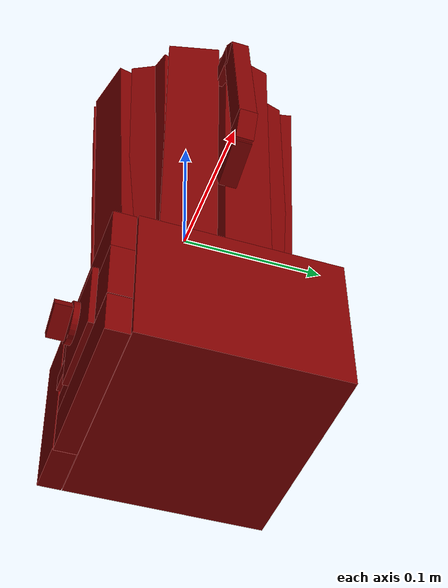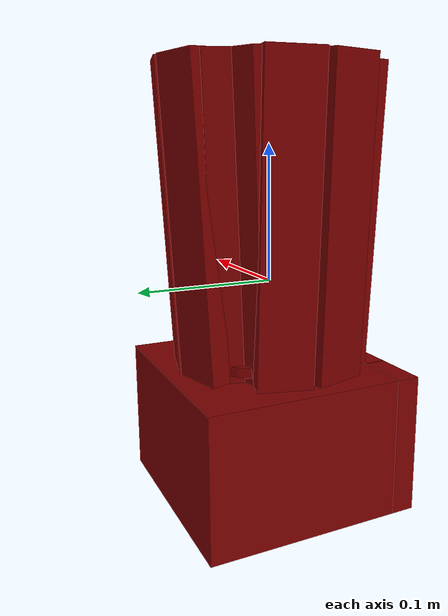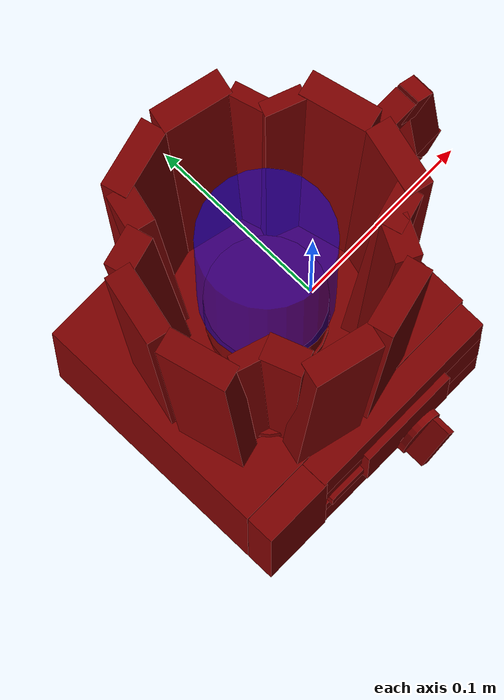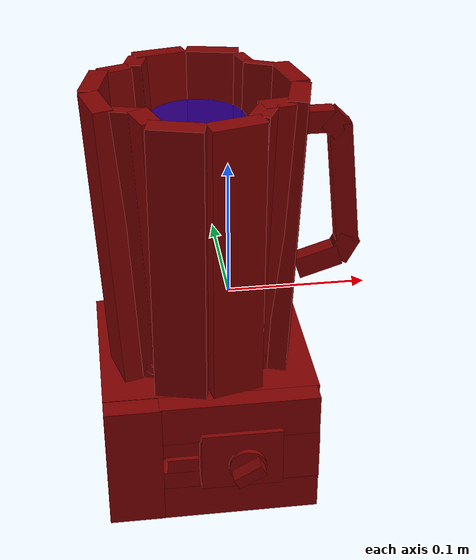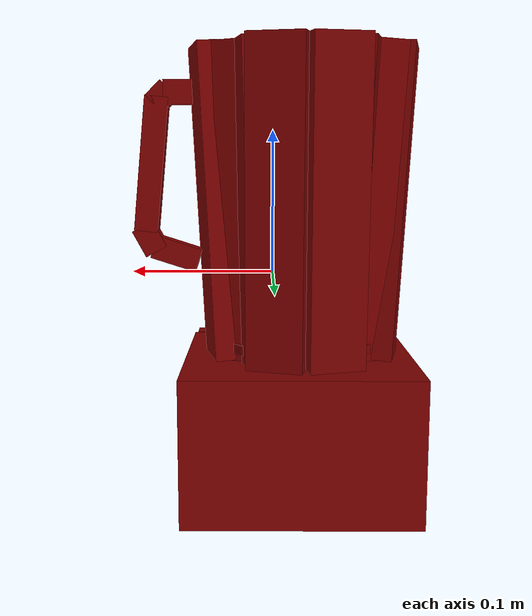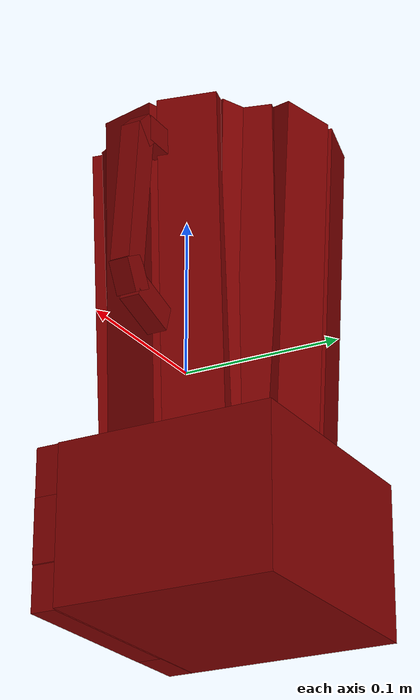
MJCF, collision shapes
<?xml version='1.0' encoding='UTF-8'?>
<mujoco model="model">
  <option timestep="0.002" gravity="0.0 0.0 -9.81"/>
  <compiler angle="radian"/>
  <asset>
    <mesh file="visuals/blade.obj" name="blade_vis"/>
    <mesh file="visuals/Body001.obj" name="Body001_vis"/>
    <mesh file="visuals/knob_speed.obj" name="knob_speed_vis"/>
    <mesh file="visuals/pitcher.obj" name="pitcher_vis"/>
    <mesh file="visuals/pitcher_main.obj" name="pitcher_main_vis"/>
    <mesh file="visuals/power_button.obj" name="power_button_vis"/>
    <texture file="visuals/T_BC001.png" name="Body001_material" type="2d"/>
    <material name="Body001_material" rgba="1 1 1 1.0" texture="Body001_material" shininess="0.5" specular="0.33333333333333337"/>
    <texture file="visuals/T_BC001.png" name="knob_speed_material" type="2d"/>
    <material name="knob_speed_material" rgba="1 1 1 1.0" texture="knob_speed_material" shininess="0.5" specular="0.33333333333333337"/>
    <texture file="visuals/T_BC001.png" name="pitcher_material" type="2d"/>
    <material name="pitcher_material" rgba="1 1 1 1.0" texture="pitcher_material" shininess="0.5" specular="0.33333333333333337"/>
    <texture file="visuals/T_BC001.png" name="blade_material" type="2d"/>
    <material name="blade_material" rgba="1 1 1 1.0" texture="blade_material" shininess="0.5" specular="0.33333333333333337"/>
    <material name="pitcher_main_material" rgba="0.32120847702026367 0.32120847702026367 0.32120847702026367 0.699999988079071" shininess="0.5" specular="0.33333333333333337"/>
    <texture file="visuals/T_BC001.png" name="power_button_material" type="2d"/>
    <material name="power_button_material" rgba="1 1 1 1.0" texture="power_button_material" shininess="0.5" specular="0.33333333333333337"/>
  </asset>
  <default>
    <default class="visual">
      <geom conaffinity="0" contype="0" group="1" type="mesh"/>
    </default>
    <default class="collision">
      <geom group="0" rgba="0.5 0 0 0.5" density="1.0" solref="0.004 1" solimp="0.998 0.998 0.001"/>
    </default>
    <default class="spawn">
      <geom group="0" rgba="1 1 1 0.5" contype="0" conaffinity="0"/>
      <site group="0" rgba="1 1 1 0.5"/>
    </default>
    <default class="region">
      <geom group="1" conaffinity="0" contype="0" rgba="0 1 0 0" mass="0"/>
    </default>
  </default>
  <worldbody>
    <body>
      <body name="object">
        <geom mesh="Body001_vis" type="mesh" solimp="0.998 0.998 0.001" solref="0.001 1" friction="0.95 0.3 0.1" class="visual" material="Body001_material"/>
        <geom type="box" pos="-0.04280856 -0.05737055 -0.09167306" size="0.013396352529525757 0.0077486238442361355 0.006119240075349808" quat="1.0 0.0 0.0 0.0" class="collision"/>
        <geom type="box" pos="-0.04280856 -0.05737055 -0.11913420" size="0.013396353460848331 0.0077486238442361355 0.007200401276350021" quat="1.0 0.0 0.0 0.0" class="collision"/>
        <geom type="box" pos="0.00132513 -0.05934339 -0.10264585" size="0.02963782288134098 0.009721463546156883 0.02329988218843937" quat="1.0 0.0 0.0 0.0" class="collision"/>
        <geom type="box" pos="0.04288949 -0.05737055 -0.10600674" size="0.015503577888011932 0.0077486238442361355 0.019938983023166656" quat="1.0 0.0 0.0 0.0" class="collision"/>
        <geom type="box" pos="0.00057280 -0.05737055 -0.14032202" size="0.057547878473997116 0.0077486238442361355 0.013972078450024128" quat="1.0 0.0 0.0 0.0" class="collision"/>
        <geom type="box" pos="0.00057280 -0.05737055 -0.07073684" size="0.05754786357283592 0.0077486238442361355 0.015359555371105671" quat="1.0 0.0 0.0 0.0" class="collision"/>
        <geom type="box" pos="-0.07594047 -0.05768858 -0.10481217" size="0.020235484465956688 0.008066640235483646 0.04907001182436943" quat="1.0 0.0 0.0 0.0" class="collision"/>
        <geom type="box" pos="-0.01801905 0.01927943 -0.10481217" size="0.07815690338611603 0.06847110390663147 0.04907036945223808" quat="1.0 0.0 0.0 0.0" class="collision"/>
        <body name="knob_speed">
          <joint axis="0.0 1.0 0.0" pos="0.00424393 -0.07910890 -0.10418915" limited="true" name="knob_speed_joint" range="0.0 4.014257279586958" type="hinge" damping="0.05" armature="0.001"/>
          <geom mesh="knob_speed_vis" type="mesh" solimp="0.998 0.998 0.001" solref="0.001 1" friction="0.95 0.3 0.1" class="visual" material="knob_speed_material"/>
          <geom class="collision" type="box" pos="0.00443760 -0.08127745 -0.10438756" size="0.004442211706191301 0.005708749406039715 0.011259826831519604" quat="0.8617826700210571 0.0 0.5072776675224304 0.0" name="knob_speed_main"/>
          <geom type="cylinder" pos="0.00442496 -0.07349149 -0.10450585" size="0.013652672059834003 0.002001713728532195" quat="0.7071067094802856 -0.7071068286895752 -1.5700929612083792e-16 -2.2148510003422914e-23" class="collision"/>
        </body>
        <body name="pitcher">
          <geom mesh="pitcher_vis" type="mesh" solimp="0.998 0.998 0.001" solref="0.001 1" friction="0.95 0.3 0.1" class="visual" material="pitcher_material"/>
          <geom class="collision" type="box" pos="0.06702685 0.01176525 0.01491736" size="0.016262676566839218 0.006255174987018108 0.00810184981673956" quat="0.9880656599998474 9.18393884873699e-16 -0.15403316915035248 -2.0695718916385886e-08" name="pitcher_handle_3"/>
          <geom class="collision" type="box" pos="0.08345240 0.01176526 0.07628109" size="0.046001095324754715 0.006255174987018108 0.008101828396320343" quat="0.6722349524497986 -0.0 -0.7403379082679749 -0.0" name="pitcher_handle_1"/>
          <geom class="collision" type="box" pos="0.08549953 0.01176527 0.02507146" size="0.010042424313724041 0.006255174987018108 0.008101828396320343" quat="0.5120910406112671 -2.831900499148353e-14 0.8589311838150024 1.1540498690010281e-07" name="pitcher_handle_2"/>
          <geom class="collision" type="box" pos="0.07592823 0.01176525 0.12210338" size="0.007123907096683979 0.006255174987018108 0.008101827464997768" quat="0.924427330493927 4.577533759485795e-15 0.38135823607444763 5.1238849607671e-08" name="pitcher_handle_4"/>
          <geom class="collision" type="box" pos="0.06323670 0.01176525 0.12484078" size="0.011389952152967453 0.00625518849119544 0.008101827464997768" quat="1.0 0.0 0.0 0.0" name="pitcher_handle_0"/>
          <geom type="cylinder" pos="-0.01913705 0.01130384 -0.04567479" size="0.057082075625658035 0.0033115732949227095" quat="1.0 0.0 0.0 0.0" class="collision"/>
          <geom type="cylinder" pos="-0.01913705 0.01130384 -0.02962197" size="0.03111385926604271 0.0028781581204384565" quat="1.0 0.0 0.0 0.0" class="collision"/>
          <body name="blade">
            <geom mesh="blade_vis" type="mesh" solimp="0.998 0.998 0.001" solref="0.001 1" friction="0.95 0.3 0.1" class="visual" material="blade_material"/>
            <geom type="cylinder" pos="-0.01985569 0.01151934 -0.00260079" size="0.031107977032661438 0.01745898835361004" quat="1.0 0.0 0.0 0.0" class="collision"/>
          </body>
          <body name="pitcher_main">
            <geom class="region" type="cylinder" size="0.03413279727101326 0.054404400289058685" pos="-0.01983289 0.01119020 0.07587546" rgba="0 0 1 0.5" name="reg_int"/>
            <geom mesh="pitcher_main_vis" type="mesh" solimp="0.998 0.998 0.001" solref="0.001 1" friction="0.95 0.3 0.1" class="visual" material="pitcher_main_material"/>
            <geom type="box" pos="-0.06493741 -0.02314594 0.04992246" size="0.010820484720170498 0.004392159171402454 0.10428368300199509" quat="0.15854039788246155 -0.011242268607020378 -0.016341591253876686 0.9871532320976257" class="collision"/>
            <geom type="box" pos="-0.08192925 -0.00992281 0.05005512" size="0.018552463501691818 0.00687137758359313 0.10428374260663986" quat="0.6167187094688416 -0.020293697714805603 -0.015907641500234604 0.7867611646652222" class="collision"/>
            <geom type="box" pos="-0.08192924 0.02797900 0.05005512" size="0.018552463501691818 0.006871377117931843 0.10428369790315628" quat="0.7867610454559326 -0.01590763032436371 -0.020293693989515305 0.6167188882827759" class="collision"/>
            <geom type="box" pos="0.04137836 0.02797901 0.05005512" size="0.018552463501691818 0.00687137758359313 0.10428374260663986" quat="0.6167187094688416 0.020293697714805603 0.015907639637589455 0.7867611646652222" class="collision"/>
            <geom type="box" pos="0.04137835 -0.00992281 0.05005512" size="0.018552463501691818 0.006871377117931843 0.10428369790315628" quat="0.7867610454559326 0.01590762846171856 0.020293695852160454 0.6167188882827759" class="collision"/>
            <geom type="box" pos="-0.03922635 -0.05097453 0.05005549" size="0.018552469089627266 0.006871378514915705 0.10428374260663986" quat="0.1202380582690239 0.0031013989355415106 -0.02559821680188179 0.9924101829528809" class="collision"/>
            <geom type="box" pos="-0.00132453 -0.05097452 0.05005549" size="0.018552463501691818 0.006871378049254417 0.10428374260663986" quat="0.12023793905973434 0.0031014170963317156 0.02559821866452694 -0.9924101829528809" class="collision"/>
            <geom type="box" pos="-0.03922635 0.07256541 0.05005549" size="0.018552463501691818 0.006871378049254417 0.10428374260663986" quat="0.12023793905973434 -0.0031014170963317156 -0.02559821866452694 -0.9924101829528809" class="collision"/>
            <geom type="box" pos="-0.06717034 0.04331690 0.05011496" size="0.010820485651493073 0.00687137758359313 0.10428371280431747" quat="0.9920954704284668 -0.028778061270713806 -0.023127730935811996 0.11993123590946198" class="collision"/>
            <geom type="box" pos="-0.05269967 0.05761696 0.05008059" size="0.010820483788847923 0.006871378049254417 0.10428372770547867" quat="0.7913755178451538 -0.031811874359846115 -0.004071452189236879 0.6104885339736938" class="collision"/>
            <geom type="box" pos="0.01685444 0.05816995 0.04986232" size="0.0108204809948802 0.0038403382059186697 0.10428372770547867" quat="0.7988603115081787 -0.008304612711071968 0.009356268681585789 -0.6013864874839783" class="collision"/>
            <geom type="box" pos="0.02540475 0.04411304 0.05000789" size="0.010820484720170498 0.003954439423978329 0.10428377240896225" quat="0.98287034034729 -0.01843164674937725 0.011580768041312695 -0.18300819396972656" class="collision"/>
            <geom type="box" pos="0.02259981 -0.02351927 0.05009124" size="0.010820482857525349 0.00687137758359313 0.10428374260663986" quat="0.13653036952018738 -0.02827528864145279 0.020484836772084236 -0.9900203943252563" class="collision"/>
            <geom type="box" pos="0.01514084 -0.03400934 0.05003687" size="0.010820485651493073 0.006871379446238279 0.10428374260663986" quat="0.5283477902412415 -0.008006410673260689 0.024510914459824562 -0.8486363887786865" class="collision"/>
            <geom type="box" pos="-0.05371759 -0.03128948 0.05009218" size="0.010820485651493073 0.006871378514915705 0.10428375005722046" quat="0.5689519047737122 0.0023401062935590744 -0.03543747961521149 0.8216035962104797" class="collision"/>
            <geom type="box" pos="-0.00132453 0.07256541 0.05005549" size="0.018552463501691818 0.006871378049254417 0.10428374260663986" quat="0.12023793905973434 -0.0031014170963317156 0.02559821866452694 0.9924101829528809" class="collision"/>
          </body>
        </body>
        <body name="power_button">
          <joint axis="0.0 1.0 0.0" pos="-0.04148375 -0.06553226 -0.10450017" limited="true" name="power_button_joint" range="0.0 0.002" type="slide" damping="1" frictionloss="1" armature=".01" stiffness="0.5" springref="-0.1"/>
          <geom mesh="power_button_vis" type="mesh" solimp="0.998 0.998 0.001" solref="0.001 1" friction="0.95 0.3 0.1" class="visual" material="power_button_material"/>
          <geom class="collision" type="box" pos="-0.04165496 -0.06482500 -0.10450555" size="0.011368107050657272 0.002875008387491107 0.005622407887130976" quat="1.0 0.0 0.0 0.0" name="power_button_main"/>
        </body>
        <geom class="region" name="reg_main" type="box" pos="-0.019529525000000002 0.010843424999999997 0.0" size="0.076930525 0.07719210500000001 0.16069869"/>
      </body>
      <site rgba="0 1 0 0" size="0.005" pos="-0.01952017 0.01263586 0.15305062" name="anchor_site"/>
    </body>
  </worldbody>
  <actuator>
    <motor name="knob_speed_joint_actuator" joint="knob_speed_joint" gear="10"/>
    <motor name="power_button_joint_actuator" joint="power_button_joint" gear="0.5"/>
  </actuator>
</mujoco>
